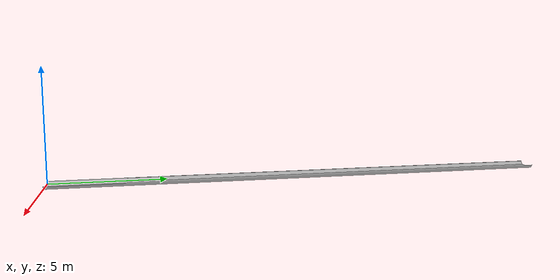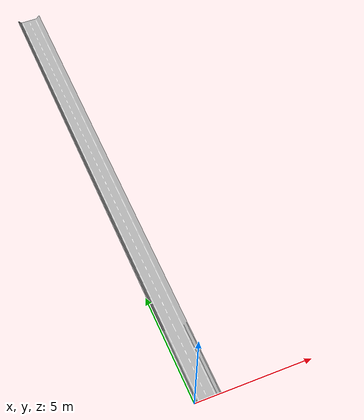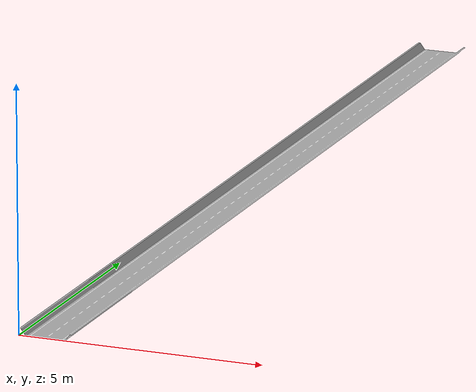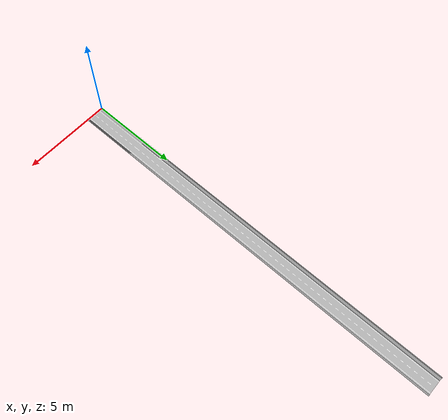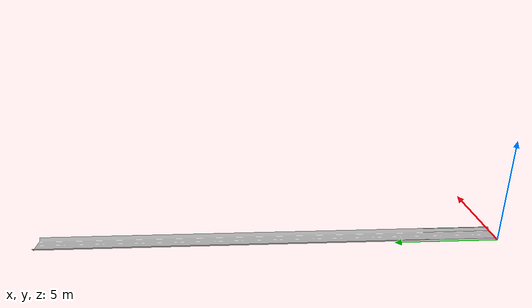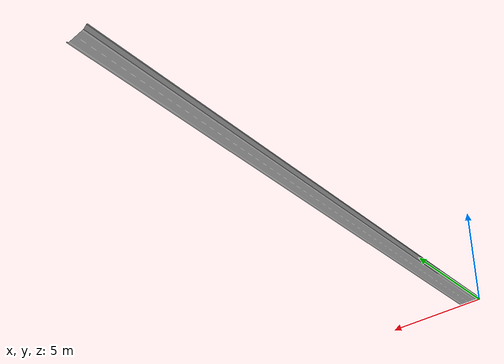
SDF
<?xml version="1.0" ?>
<sdf version="1.4">
  <model name="asphalt_plane">
    <static>true</static>
    <link name="link">
      <collision name='collision'>
          <geometry>
            <plane>
              <normal>0 0 1</normal>
              <size>3 44</size>
            </plane>
          </geometry>
          <surface>
            <friction>
              <ode>
                <mu>100</mu>
                <mu2>50</mu2>
              </ode>
            </friction>
            <bounce/>
            <contact>
              <ode/>
            </contact>
          </surface>
        </collision>
      <visual name="visual">
        <geometry>
          <mesh>
            <uri>model://autonomos_gazebo/models/circuit2way_straight/meshes/circuit_straight.dae</uri>
         </mesh>
        </geometry>
      </visual>
      <velocity_decay>
          <linear>0</linear>
          <angular>0</angular>
      </velocity_decay>
      <self_collide>0</self_collide>
      <kinematic>0</kinematic>
      <gravity>1</gravity>
    </link>
  </model>
</sdf>
